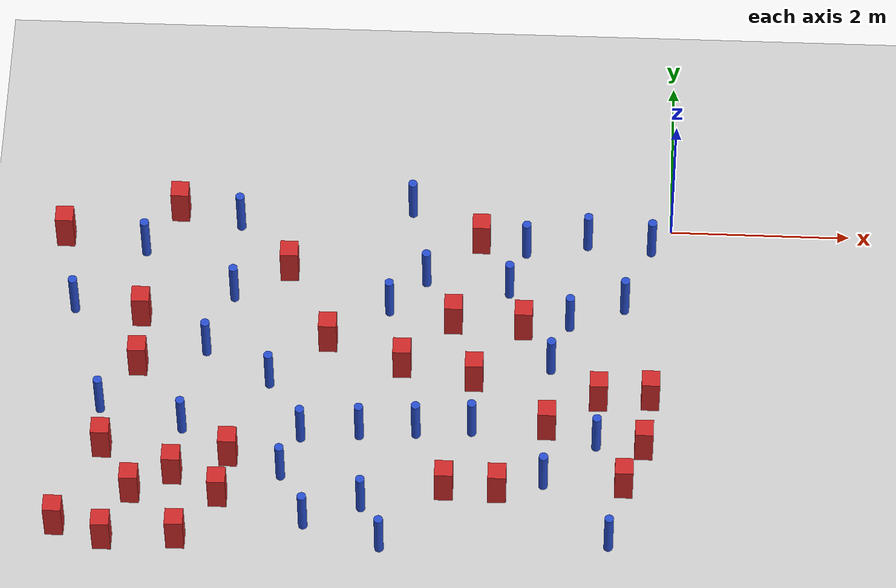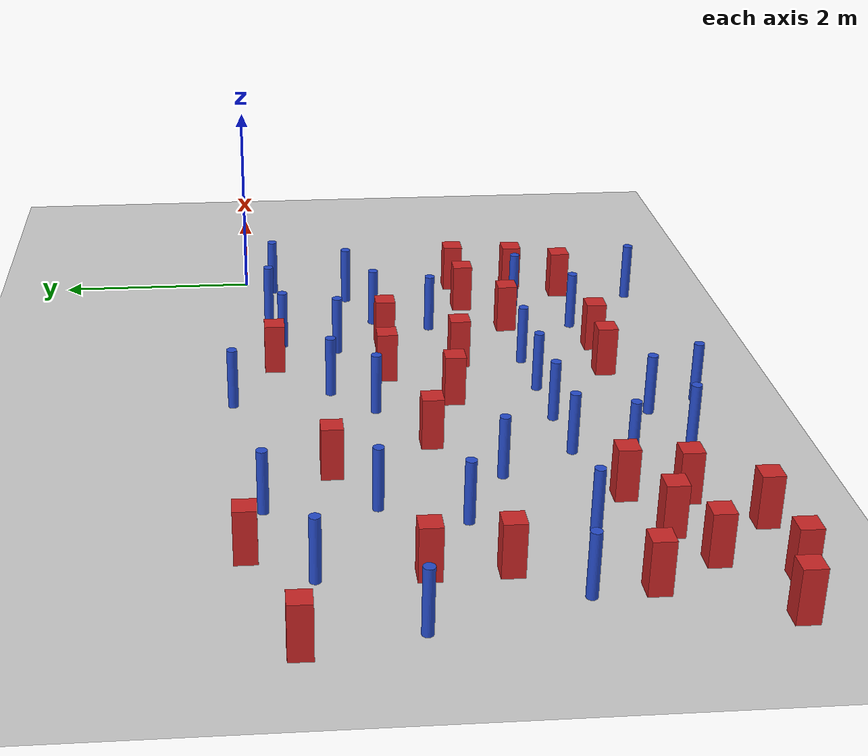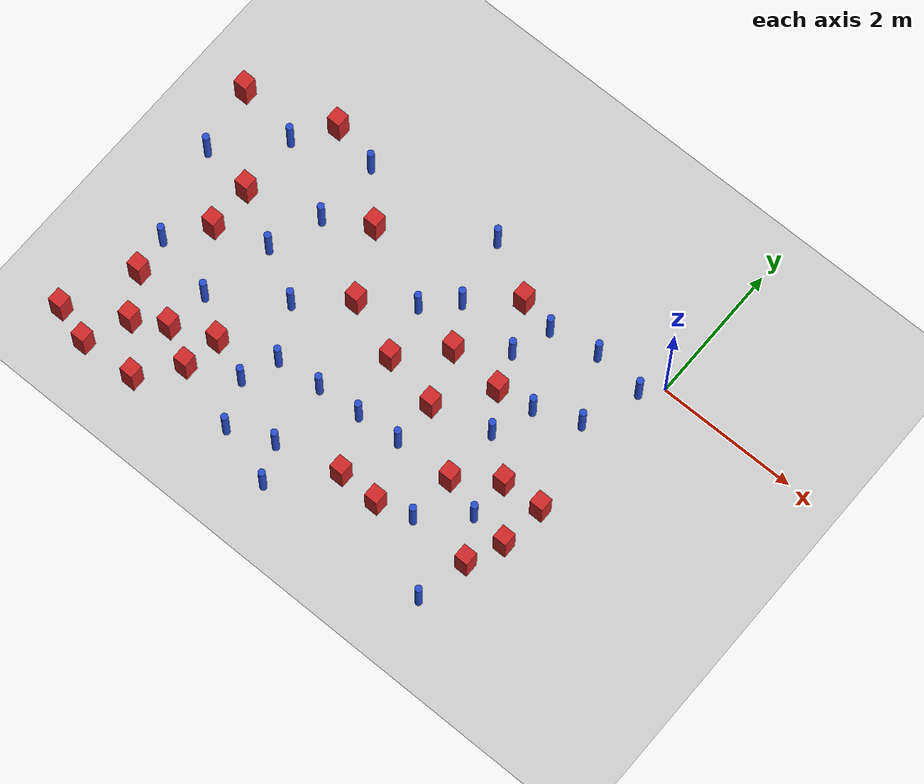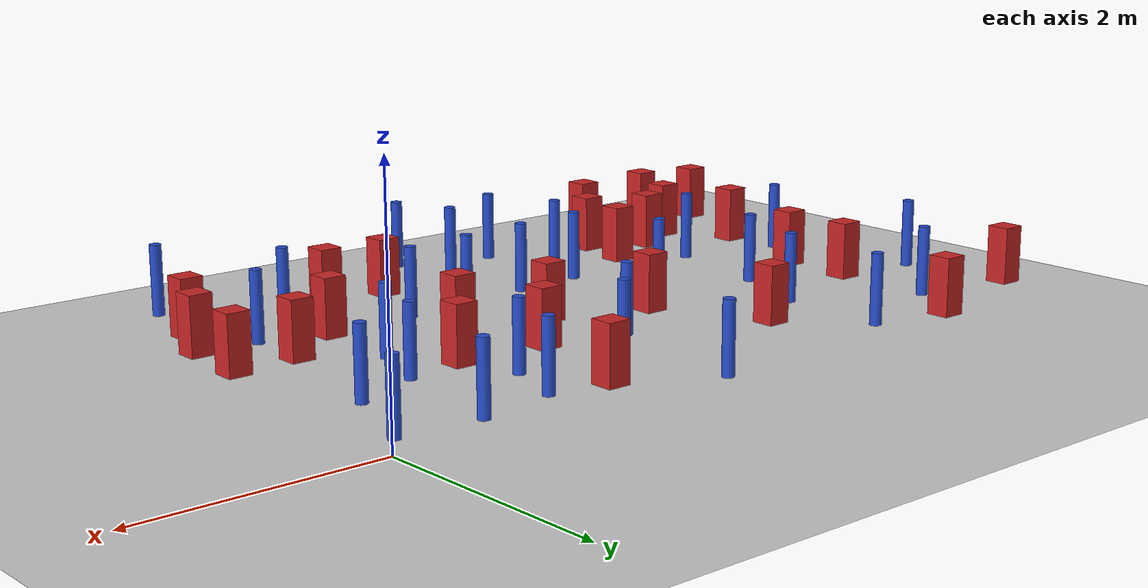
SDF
<sdf version="1.6">
 <world name="default">
  <model name="ground_plane">
   <static>1</static>
   <link name="link">
    <collision name="collision">
     <geometry><plane><normal>0 0 1</normal><size>100 100</size></plane></geometry>
     <surface><friction><ode><mu>100</mu><mu2>50</mu2></ode></friction></surface>
    </collision>
    <visual name="visual">
     <cast_shadows>0</cast_shadows>
     <geometry><plane><normal>0 0 1</normal><size>100 100</size></plane></geometry>
     <material>
      <ambient>1.0 1.0 1.0 1.0</ambient>
      <diffuse>0.8 0.8 0.8 1.0</diffuse>
      <specular>0.01 0.01 0.01 1.000000</specular>
     </material>
    </visual>
   </link>
  </model>
  <model name="square_post_obstacle1">
   <static>true</static>
   <pose>-4.26526882868 -0.711887170166 1.91545236811e-07 -7.35059704564e-06 1.12565212e-07 2.39332434364e-05</pose>
   <link name="link">
    <pose>0 0 0.25 0 -0 0</pose>
    <inertial>
     <mass>100</mass>
     <inertia>
      <ixx>0.166667</ixx>
      <ixy>0</ixy>
      <ixz>0</ixz>
      <iyy>0.166667</iyy>
      <iyz>0</iyz>
      <izz>0.166667</izz>
     </inertia>
    </inertial>
    <collision name="collision"><geometry><box><size>.2 .2 .5</size></box></geometry></collision>
    <visual name="visual">
     <geometry><box><size>.2 .2 .5</size></box></geometry>
     <material>
      <script><name>Gazebo/Red</name><uri>file://media/materials/scripts/gazebo.material</uri></script>
     </material>
    </visual>
   </link>
  </model>
  <model name="pole_obstacle1">
   <static>true</static>
   <pose>-6.63601493796 -1.28461203914 7.38925637345e-09 -8.471706928e-08 1.24976765134e-08 -1.74513093015e-07</pose>
   <link name="link">
    <pose>0 0 0.3 0 -0 0</pose>
    <inertial>
     <mass>1</mass>
     <inertia><ixx>0.145833</ixx><ixy>0</ixy><ixz>0</ixz><iyy>0.145833</iyy><iyz>0</iyz><izz>0.125</izz></inertia>
    </inertial>
    <collision name="collision">
     <geometry><cylinder><radius>0.05</radius><length>.6</length></cylinder></geometry>
    </collision>
    <visual name="visual">
     <geometry><cylinder><radius>0.05</radius><length>.6</length></cylinder></geometry>
     <material>
      <script><name>Gazebo/Blue</name><uri>file://media/materials/scripts/gazebo.material</uri></script>
     </material>
    </visual>
   </link>
  </model>
  <model name="pole_obstacle9">
   <static>true</static>
   <pose>-4.84726449901 -0.0963658252567 7.38925637345e-09 -8.47170692799e-08 1.24976765039e-08 -1.74513093019e-07</pose>
   <link name="link">
    <pose>0 0 0.3 0 -0 0</pose>
    <inertial>
     <mass>1</mass>
     <inertia><ixx>0.145833</ixx><ixy>0</ixy><ixz>0</ixz><iyy>0.145833</iyy><iyz>0</iyz><izz>0.125</izz></inertia>
    </inertial>
    <collision name="collision">
     <geometry><cylinder><radius>0.05</radius><length>.6</length></cylinder></geometry>
    </collision>
    <visual name="visual">
     <geometry><cylinder><radius>0.05</radius><length>.6</length></cylinder></geometry>
     <material>
      <script><name>Gazebo/Blue</name><uri>file://media/materials/scripts/gazebo.material</uri></script>
     </material>
    </visual>
   </link>
  </model>
  <model name="pole_obstacle17">
   <static>true</static>
   <pose>-0.780352660675 -2.9070580991 7.38925637345e-09 -8.47170692799e-08 1.2497676509e-08 -1.74513093016e-07</pose>
   <link name="link">
    <pose>0 0 0.3 0 -0 0</pose>
    <inertial>
     <mass>1</mass>
     <inertia><ixx>0.145833</ixx><ixy>0</ixy><ixz>0</ixz><iyy>0.145833</iyy><iyz>0</iyz><izz>0.125</izz></inertia>
    </inertial>
    <collision name="collision">
     <geometry><cylinder><radius>0.05</radius><length>.6</length></cylinder></geometry>
    </collision>
    <visual name="visual">
     <geometry><cylinder><radius>0.05</radius><length>.6</length></cylinder></geometry>
     <material>
      <script><name>Gazebo/Blue</name><uri>file://media/materials/scripts/gazebo.material</uri></script>
     </material>
    </visual>
   </link>
  </model>
  <model name="pole_obstacle19">
   <static>true</static>
   <pose>-2.72758485795 -0.791963947445 7.38925637345e-09 -8.471706928e-08 1.24976765177e-08 -1.74513093012e-07</pose>
   <link name="link">
    <pose>0 0 0.3 0 -0 0</pose>
    <inertial>
     <mass>1</mass>
     <inertia><ixx>0.145833</ixx><ixy>0</ixy><ixz>0</ixz><iyy>0.145833</iyy><iyz>0</iyz><izz>0.125</izz></inertia>
    </inertial>
    <collision name="collision">
     <geometry><cylinder><radius>0.05</radius><length>.6</length></cylinder></geometry>
    </collision>
    <visual name="visual">
     <geometry><cylinder><radius>0.05</radius><length>.6</length></cylinder></geometry>
     <material>
      <script><name>Gazebo/Blue</name><uri>file://media/materials/scripts/gazebo.material</uri></script>
     </material>
    </visual>
   </link>
  </model>
  <model name="pole_obstacle29">
   <static>true</static>
   <pose>-0.505523517764 -1.08619555104 7.38925637345e-09 -8.471706928e-08 1.24976765092e-08 -1.74513093016e-07</pose>
   <link name="link">
    <pose>0 0 0.3 0 -0 0</pose>
    <inertial>
     <mass>1</mass>
     <inertia><ixx>0.145833</ixx><ixy>0</ixy><ixz>0</ixz><iyy>0.145833</iyy><iyz>0</iyz><izz>0.125</izz></inertia>
    </inertial>
    <collision name="collision">
     <geometry><cylinder><radius>0.05</radius><length>.6</length></cylinder></geometry>
    </collision>
    <visual name="visual">
     <geometry><cylinder><radius>0.05</radius><length>.6</length></cylinder></geometry>
     <material>
      <script><name>Gazebo/Blue</name><uri>file://media/materials/scripts/gazebo.material</uri></script>
     </material>
    </visual>
   </link>
  </model>
  <model name="square_post_obstacle35">
   <static>true</static>
   <pose>-2.13155603779 -0.265494612136 1.91545236811e-07 -7.35059704564e-06 1.12565212e-07 2.39332434364e-05</pose>
   <link name="link">
    <pose>0 0 0.25 0 -0 0</pose>
    <inertial>
     <mass>100</mass>
     <inertia>
      <ixx>0.166667</ixx>
      <ixy>0</ixy>
      <ixz>0</ixz>
      <iyy>0.166667</iyy>
      <iyz>0</iyz>
      <izz>0.166667</izz>
     </inertia>
    </inertial>
    <collision name="collision"><geometry><box><size>.2 .2 .5</size></box></geometry></collision>
    <visual name="visual">
     <geometry><box><size>.2 .2 .5</size></box></geometry>
     <material>
      <script><name>Gazebo/Red</name><uri>file://media/materials/scripts/gazebo.material</uri></script>
     </material>
    </visual>
   </link>
  </model>
  <model name="pole_obstacle42">
   <static>true</static>
   <pose>-3.12457049123 -1.19997467191 7.38925637345e-09 -8.471706928e-08 1.24976765152e-08 -1.74513093012e-07</pose>
   <link name="link">
    <pose>0 0 0.3 0 -0 0</pose>
    <inertial>
     <mass>1</mass>
     <inertia><ixx>0.145833</ixx><ixy>0</ixy><ixz>0</ixz><iyy>0.145833</iyy><iyz>0</iyz><izz>0.125</izz></inertia>
    </inertial>
    <collision name="collision">
     <geometry><cylinder><radius>0.05</radius><length>.6</length></cylinder></geometry>
    </collision>
    <visual name="visual">
     <geometry><cylinder><radius>0.05</radius><length>.6</length></cylinder></geometry>
     <material>
      <script><name>Gazebo/Blue</name><uri>file://media/materials/scripts/gazebo.material</uri></script>
     </material>
    </visual>
   </link>
  </model>
  <model name="pole_obstacle45">
   <static>true</static>
   <pose>-4.86580959171 -1.06866118118 7.38925637345e-09 -8.471706928e-08 1.24976765134e-08 -1.74513093015e-07</pose>
   <link name="link">
    <pose>0 0 0.3 0 -0 0</pose>
    <inertial>
     <mass>1</mass>
     <inertia><ixx>0.145833</ixx><ixy>0</ixy><ixz>0</ixz><iyy>0.145833</iyy><iyz>0</iyz><izz>0.125</izz></inertia>
    </inertial>
    <collision name="collision">
     <geometry><cylinder><radius>0.05</radius><length>.6</length></cylinder></geometry>
    </collision>
    <visual name="visual">
     <geometry><cylinder><radius>0.05</radius><length>.6</length></cylinder></geometry>
     <material>
      <script><name>Gazebo/Blue</name><uri>file://media/materials/scripts/gazebo.material</uri></script>
     </material>
    </visual>
   </link>
  </model>
  <model name="square_post_obstacle48">
   <static>true</static>
   <pose>-4.89228621747 -3.72092902733 1.91545236811e-07 -7.35059704564e-06 1.12565212e-07 2.39332434364e-05</pose>
   <link name="link">
    <pose>0 0 0.25 0 -0 0</pose>
    <inertial>
     <mass>100</mass>
     <inertia>
      <ixx>0.166667</ixx>
      <ixy>0</ixy>
      <ixz>0</ixz>
      <iyy>0.166667</iyy>
      <iyz>0</iyz>
      <izz>0.166667</izz>
     </inertia>
    </inertial>
    <collision name="collision"><geometry><box><size>.2 .2 .5</size></box></geometry></collision>
    <visual name="visual">
     <geometry><box><size>.2 .2 .5</size></box></geometry>
     <material>
      <script><name>Gazebo/Red</name><uri>file://media/materials/scripts/gazebo.material</uri></script>
     </material>
    </visual>
   </link>
  </model>
  <model name="square_post_obstacle55">
   <static>true</static>
   <pose>-1.62393495487 -1.41475054832 1.91545236811e-07 -7.35059704564e-06 1.12565212e-07 2.39332434364e-05</pose>
   <link name="link">
    <pose>0 0 0.25 0 -0 0</pose>
    <inertial>
     <mass>100</mass>
     <inertia>
      <ixx>0.166667</ixx>
      <ixy>0</ixy>
      <ixz>0</ixz>
      <iyy>0.166667</iyy>
      <iyz>0</iyz>
      <izz>0.166667</izz>
     </inertia>
    </inertial>
    <collision name="collision"><geometry><box><size>.2 .2 .5</size></box></geometry></collision>
    <visual name="visual">
     <geometry><box><size>.2 .2 .5</size></box></geometry>
     <material>
      <script><name>Gazebo/Red</name><uri>file://media/materials/scripts/gazebo.material</uri></script>
     </material>
    </visual>
   </link>
  </model>
  <model name="square_post_obstacle57">
   <static>true</static>
   <pose>-5.88093063493 -1.38299816439 1.91545236811e-07 -7.35059704564e-06 1.12565212e-07 2.39332434364e-05</pose>
   <link name="link">
    <pose>0 0 0.25 0 -0 0</pose>
    <inertial>
     <mass>100</mass>
     <inertia>
      <ixx>0.166667</ixx>
      <ixy>0</ixy>
      <ixz>0</ixz>
      <iyy>0.166667</iyy>
      <iyz>0</iyz>
      <izz>0.166667</izz>
     </inertia>
    </inertial>
    <collision name="collision"><geometry><box><size>.2 .2 .5</size></box></geometry></collision>
    <visual name="visual">
     <geometry><box><size>.2 .2 .5</size></box></geometry>
     <material>
      <script><name>Gazebo/Red</name><uri>file://media/materials/scripts/gazebo.material</uri></script>
     </material>
    </visual>
   </link>
  </model>
  <model name="square_post_obstacle58">
   <static>true</static>
   <pose>-1.32920908359 -2.72755203425 1.91545236811e-07 -7.35059704564e-06 1.12565212e-07 2.39332434364e-05</pose>
   <link name="link">
    <pose>0 0 0.25 0 -0 0</pose>
    <inertial>
     <mass>100</mass>
     <inertia>
      <ixx>0.166667</ixx>
      <ixy>0</ixy>
      <ixz>0</ixz>
      <iyy>0.166667</iyy>
      <iyz>0</iyz>
      <izz>0.166667</izz>
     </inertia>
    </inertial>
    <collision name="collision"><geometry><box><size>.2 .2 .5</size></box></geometry></collision>
    <visual name="visual">
     <geometry><box><size>.2 .2 .5</size></box></geometry>
     <material>
      <script><name>Gazebo/Red</name><uri>file://media/materials/scripts/gazebo.material</uri></script>
     </material>
    </visual>
   </link>
  </model>
  <model name="square_post_obstacle59">
   <static>true</static>
   <pose>-1.84909285894 -3.56050498082 1.91545236811e-07 -7.35059704564e-06 1.12565212e-07 2.39332434364e-05</pose>
   <link name="link">
    <pose>0 0 0.25 0 -0 0</pose>
    <inertial>
     <mass>100</mass>
     <inertia>
      <ixx>0.166667</ixx>
      <ixy>0</ixy>
      <ixz>0</ixz>
      <iyy>0.166667</iyy>
      <iyz>0</iyz>
      <izz>0.166667</izz>
     </inertia>
    </inertial>
    <collision name="collision"><geometry><box><size>.2 .2 .5</size></box></geometry></collision>
    <visual name="visual">
     <geometry><box><size>.2 .2 .5</size></box></geometry>
     <material>
      <script><name>Gazebo/Red</name><uri>file://media/materials/scripts/gazebo.material</uri></script>
     </material>
    </visual>
   </link>
  </model>
  <model name="pole_obstacle57">
   <static>true</static>
   <pose>-3.38586564021 -2.8536109097 7.38925637345e-09 -8.471706928e-08 1.24976765098e-08 -1.74513093016e-07</pose>
   <link name="link">
    <pose>0 0 0.3 0 -0 0</pose>
    <inertial>
     <mass>1</mass>
     <inertia><ixx>0.145833</ixx><ixy>0</ixy><ixz>0</ixz><iyy>0.145833</iyy><iyz>0</iyz><izz>0.125</izz></inertia>
    </inertial>
    <collision name="collision">
     <geometry><cylinder><radius>0.05</radius><length>.6</length></cylinder></geometry>
    </collision>
    <visual name="visual">
     <geometry><cylinder><radius>0.05</radius><length>.6</length></cylinder></geometry>
     <material>
      <script><name>Gazebo/Blue</name><uri>file://media/materials/scripts/gazebo.material</uri></script>
     </material>
    </visual>
   </link>
  </model>
  <model name="square_post_obstacle67">
   <static>true</static>
   <pose>-2.4062331315 -1.36412563275 1.91545236811e-07 -7.35059704564e-06 1.12565212e-07 2.39332434364e-05</pose>
   <link name="link">
    <pose>0 0 0.25 0 -0 0</pose>
    <inertial>
     <mass>100</mass>
     <inertia>
      <ixx>0.166667</ixx>
      <ixy>0</ixy>
      <ixz>0</ixz>
      <iyy>0.166667</iyy>
      <iyz>0</iyz>
      <izz>0.166667</izz>
     </inertia>
    </inertial>
    <collision name="collision"><geometry><box><size>.2 .2 .5</size></box></geometry></collision>
    <visual name="visual">
     <geometry><box><size>.2 .2 .5</size></box></geometry>
     <material>
      <script><name>Gazebo/Red</name><uri>file://media/materials/scripts/gazebo.material</uri></script>
     </material>
    </visual>
   </link>
  </model>
  <model name="pole_obstacle66">
   <static>true</static>
   <pose>-0.935268300344 -0.232720809685 7.38925637345e-09 -8.471706928e-08 1.24976765152e-08 -1.74513093011e-07</pose>
   <link name="link">
    <pose>0 0 0.3 0 -0 0</pose>
    <inertial>
     <mass>1</mass>
     <inertia><ixx>0.145833</ixx><ixy>0</ixy><ixz>0</ixz><iyy>0.145833</iyy><iyz>0</iyz><izz>0.125</izz></inertia>
    </inertial>
    <collision name="collision">
     <geometry><cylinder><radius>0.05</radius><length>.6</length></cylinder></geometry>
    </collision>
    <visual name="visual">
     <geometry><cylinder><radius>0.05</radius><length>.6</length></cylinder></geometry>
     <material>
      <script><name>Gazebo/Blue</name><uri>file://media/materials/scripts/gazebo.material</uri></script>
     </material>
    </visual>
   </link>
  </model>
  <model name="square_post_obstacle69">
   <static>true</static>
   <pose>-5.40521460969 -3.44993451107 1.91545236811e-07 -7.35059704564e-06 1.12565212e-07 2.39332434364e-05</pose>
   <link name="link">
    <pose>0 0 0.25 0 -0 0</pose>
    <inertial>
     <mass>100</mass>
     <inertia>
      <ixx>0.166667</ixx>
      <ixy>0</ixy>
      <ixz>0</ixz>
      <iyy>0.166667</iyy>
      <iyz>0</iyz>
      <izz>0.166667</izz>
     </inertia>
    </inertial>
    <collision name="collision"><geometry><box><size>.2 .2 .5</size></box></geometry></collision>
    <visual name="visual">
     <geometry><box><size>.2 .2 .5</size></box></geometry>
     <material>
      <script><name>Gazebo/Red</name><uri>file://media/materials/scripts/gazebo.material</uri></script>
     </material>
    </visual>
   </link>
  </model>
  <model name="square_post_obstacle70">
   <static>true</static>
   <pose>-0.769732269394 -2.33192935458 1.91545236811e-07 -7.35059704564e-06 1.12565212e-07 2.39332434364e-05</pose>
   <link name="link">
    <pose>0 0 0.25 0 -0 0</pose>
    <inertial>
     <mass>100</mass>
     <inertia>
      <ixx>0.166667</ixx>
      <ixy>0</ixy>
      <ixz>0</ixz>
      <iyy>0.166667</iyy>
      <iyz>0</iyz>
      <izz>0.166667</izz>
     </inertia>
    </inertial>
    <collision name="collision"><geometry><box><size>.2 .2 .5</size></box></geometry></collision>
    <visual name="visual">
     <geometry><box><size>.2 .2 .5</size></box></geometry>
     <material>
      <script><name>Gazebo/Red</name><uri>file://media/materials/scripts/gazebo.material</uri></script>
     </material>
    </visual>
   </link>
  </model>
  <model name="pole_obstacle67">
   <static>true</static>
   <pose>-5.89477469104 -0.48539854308 7.38925637345e-09 -8.471706928e-08 1.24976765164e-08 -1.74513093013e-07</pose>
   <link name="link">
    <pose>0 0 0.3 0 -0 0</pose>
    <inertial>
     <mass>1</mass>
     <inertia><ixx>0.145833</ixx><ixy>0</ixy><ixz>0</ixz><iyy>0.145833</iyy><iyz>0</iyz><izz>0.125</izz></inertia>
    </inertial>
    <collision name="collision">
     <geometry><cylinder><radius>0.05</radius><length>.6</length></cylinder></geometry>
    </collision>
    <visual name="visual">
     <geometry><cylinder><radius>0.05</radius><length>.6</length></cylinder></geometry>
     <material>
      <script><name>Gazebo/Blue</name><uri>file://media/materials/scripts/gazebo.material</uri></script>
     </material>
    </visual>
   </link>
  </model>
  <model name="pole_obstacle73">
   <static>true</static>
   <pose>-5.33891521916 -2.83716065819 7.38925637345e-09 -8.47170692798e-08 1.24976764937e-08 -1.74513093023e-07</pose>
   <link name="link">
    <pose>0 0 0.3 0 -0 0</pose>
    <inertial>
     <mass>1</mass>
     <inertia><ixx>0.145833</ixx><ixy>0</ixy><ixz>0</ixz><iyy>0.145833</iyy><iyz>0</iyz><izz>0.125</izz></inertia>
    </inertial>
    <collision name="collision">
     <geometry><cylinder><radius>0.05</radius><length>.6</length></cylinder></geometry>
    </collision>
    <visual name="visual">
     <geometry><cylinder><radius>0.05</radius><length>.6</length></cylinder></geometry>
     <material>
      <script><name>Gazebo/Blue</name><uri>file://media/materials/scripts/gazebo.material</uri></script>
     </material>
    </visual>
   </link>
  </model>
  <model name="pole_obstacle83">
   <static>true</static>
   <pose>-0.618331014408 -4.18906041752 7.38925637345e-09 -8.471706928e-08 1.24976765086e-08 -1.74513093015e-07</pose>
   <link name="link">
    <pose>0 0 0.3 0 -0 0</pose>
    <inertial>
     <mass>1</mass>
     <inertia><ixx>0.145833</ixx><ixy>0</ixy><ixz>0</ixz><iyy>0.145833</iyy><iyz>0</iyz><izz>0.125</izz></inertia>
    </inertial>
    <collision name="collision">
     <geometry><cylinder><radius>0.05</radius><length>.6</length></cylinder></geometry>
    </collision>
    <visual name="visual">
     <geometry><cylinder><radius>0.05</radius><length>.6</length></cylinder></geometry>
     <material>
      <script><name>Gazebo/Blue</name><uri>file://media/materials/scripts/gazebo.material</uri></script>
     </material>
    </visual>
   </link>
  </model>
  <model name="pole_obstacle88">
   <static>true</static>
   <pose>-2.76405227803 -2.81121883038 7.38925637345e-09 -8.47170692798e-08 1.24976764939e-08 -1.74513093025e-07</pose>
   <link name="link">
    <pose>0 0 0.3 0 -0 0</pose>
    <inertial>
     <mass>1</mass>
     <inertia><ixx>0.145833</ixx><ixy>0</ixy><ixz>0</ixz><iyy>0.145833</iyy><iyz>0</iyz><izz>0.125</izz></inertia>
    </inertial>
    <collision name="collision">
     <geometry><cylinder><radius>0.05</radius><length>.6</length></cylinder></geometry>
    </collision>
    <visual name="visual">
     <geometry><cylinder><radius>0.05</radius><length>.6</length></cylinder></geometry>
     <material>
      <script><name>Gazebo/Blue</name><uri>file://media/materials/scripts/gazebo.material</uri></script>
     </material>
    </visual>
   </link>
  </model>
  <model name="pole_obstacle93">
   <static>true</static>
   <pose>-2.91851841071 0.152679662754 7.38925637345e-09 -8.471706928e-08 1.2497676517e-08 -1.74513093012e-07</pose>
   <link name="link">
    <pose>0 0 0.3 0 -0 0</pose>
    <inertial>
     <mass>1</mass>
     <inertia><ixx>0.145833</ixx><ixy>0</ixy><ixz>0</ixz><iyy>0.145833</iyy><iyz>0</iyz><izz>0.125</izz></inertia>
    </inertial>
    <collision name="collision">
     <geometry><cylinder><radius>0.05</radius><length>.6</length></cylinder></geometry>
    </collision>
    <visual name="visual">
     <geometry><cylinder><radius>0.05</radius><length>.6</length></cylinder></geometry>
     <material>
      <script><name>Gazebo/Blue</name><uri>file://media/materials/scripts/gazebo.material</uri></script>
     </material>
    </visual>
   </link>
  </model>
  <model name="pole_obstacle94">
   <static>true</static>
   <pose>-4.02808985476 -2.90569835696 7.38925637345e-09 -8.47170692798e-08 1.24976764953e-08 -1.74513093023e-07</pose>
   <link name="link">
    <pose>0 0 0.3 0 -0 0</pose>
    <inertial>
     <mass>1</mass>
     <inertia><ixx>0.145833</ixx><ixy>0</ixy><ixz>0</ixz><iyy>0.145833</iyy><iyz>0</iyz><izz>0.125</izz></inertia>
    </inertial>
    <collision name="collision">
     <geometry><cylinder><radius>0.05</radius><length>.6</length></cylinder></geometry>
    </collision>
    <visual name="visual">
     <geometry><cylinder><radius>0.05</radius><length>.6</length></cylinder></geometry>
     <material>
      <script><name>Gazebo/Blue</name><uri>file://media/materials/scripts/gazebo.material</uri></script>
     </material>
    </visual>
   </link>
  </model>
  <model name="square_post_obstacle84">
   <static>true</static>
   <pose>-2.95177054765 -1.96494600228 1.91545236811e-07 -7.35059704564e-06 1.12565212e-07 2.39332434364e-05</pose>
   <link name="link">
    <pose>0 0 0.25 0 -0 0</pose>
    <inertial>
     <mass>100</mass>
     <inertia>
      <ixx>0.166667</ixx>
      <ixy>0</ixy>
      <ixz>0</ixz>
      <iyy>0.166667</iyy>
      <iyz>0</iyz>
      <izz>0.166667</izz>
     </inertia>
    </inertial>
    <collision name="collision"><geometry><box><size>.2 .2 .5</size></box></geometry></collision>
    <visual name="visual">
     <geometry><box><size>.2 .2 .5</size></box></geometry>
     <material>
      <script><name>Gazebo/Red</name><uri>file://media/materials/scripts/gazebo.material</uri></script>
     </material>
    </visual>
   </link>
  </model>
  <model name="pole_obstacle98">
   <static>true</static>
   <pose>-3.94500633103 -4.02688731204 7.38925637345e-09 -8.47170692793e-08 1.24976764468e-08 -1.74513093039e-07</pose>
   <link name="link">
    <pose>0 0 0.3 0 -0 0</pose>
    <inertial>
     <mass>1</mass>
     <inertia><ixx>0.145833</ixx><ixy>0</ixy><ixz>0</ixz><iyy>0.145833</iyy><iyz>0</iyz><izz>0.125</izz></inertia>
    </inertial>
    <collision name="collision">
     <geometry><cylinder><radius>0.05</radius><length>.6</length></cylinder></geometry>
    </collision>
    <visual name="visual">
     <geometry><cylinder><radius>0.05</radius><length>.6</length></cylinder></geometry>
     <material>
      <script><name>Gazebo/Blue</name><uri>file://media/materials/scripts/gazebo.material</uri></script>
     </material>
    </visual>
   </link>
  </model>
  <model name="square_post_obstacle88">
   <static>true</static>
   <pose>-5.84811692595 -3.70355250228 1.91545236811e-07 -7.35059704564e-06 1.12565212e-07 2.39332434364e-05</pose>
   <link name="link">
    <pose>0 0 0.25 0 -0 0</pose>
    <inertial>
     <mass>100</mass>
     <inertia>
      <ixx>0.166667</ixx>
      <ixy>0</ixy>
      <ixz>0</ixz>
      <iyy>0.166667</iyy>
      <iyz>0</iyz>
      <izz>0.166667</izz>
     </inertia>
    </inertial>
    <collision name="collision"><geometry><box><size>.2 .2 .5</size></box></geometry></collision>
    <visual name="visual">
     <geometry><box><size>.2 .2 .5</size></box></geometry>
     <material>
      <script><name>Gazebo/Red</name><uri>file://media/materials/scripts/gazebo.material</uri></script>
     </material>
    </visual>
   </link>
  </model>
  <model name="square_post_obstacle89">
   <static>true</static>
   <pose>-6.11195427561 -4.30634215229 1.91545236811e-07 -7.35059704564e-06 1.12565212e-07 2.39332434364e-05</pose>
   <link name="link">
    <pose>0 0 0.25 0 -0 0</pose>
    <inertial>
     <mass>100</mass>
     <inertia>
      <ixx>0.166667</ixx>
      <ixy>0</ixy>
      <ixz>0</ixz>
      <iyy>0.166667</iyy>
      <iyz>0</iyz>
      <izz>0.166667</izz>
     </inertia>
    </inertial>
    <collision name="collision"><geometry><box><size>.2 .2 .5</size></box></geometry></collision>
    <visual name="visual">
     <geometry><box><size>.2 .2 .5</size></box></geometry>
     <material>
      <script><name>Gazebo/Red</name><uri>file://media/materials/scripts/gazebo.material</uri></script>
     </material>
    </visual>
   </link>
  </model>
  <model name="square_post_obstacle90">
   <static>true</static>
   <pose>-4.80779694408 -3.19485197217 1.91545236811e-07 -7.35059704564e-06 1.12565212e-07 2.39332434364e-05</pose>
   <link name="link">
    <pose>0 0 0.25 0 -0 0</pose>
    <inertial>
     <mass>100</mass>
     <inertia>
      <ixx>0.166667</ixx>
      <ixy>0</ixy>
      <ixz>0</ixz>
      <iyy>0.166667</iyy>
      <iyz>0</iyz>
      <izz>0.166667</izz>
     </inertia>
    </inertial>
    <collision name="collision"><geometry><box><size>.2 .2 .5</size></box></geometry></collision>
    <visual name="visual">
     <geometry><box><size>.2 .2 .5</size></box></geometry>
     <material>
      <script><name>Gazebo/Red</name><uri>file://media/materials/scripts/gazebo.material</uri></script>
     </material>
    </visual>
   </link>
  </model>
  <model name="square_post_obstacle91">
   <static>true</static>
   <pose>-6.64189005051 -4.14414729263 1.91545236811e-07 -7.35059704564e-06 1.12565212e-07 2.39332434364e-05</pose>
   <link name="link">
    <pose>0 0 0.25 0 -0 0</pose>
    <inertial>
     <mass>100</mass>
     <inertia>
      <ixx>0.166667</ixx>
      <ixy>0</ixy>
      <ixz>0</ixz>
      <iyy>0.166667</iyy>
      <iyz>0</iyz>
      <izz>0.166667</izz>
     </inertia>
    </inertial>
    <collision name="collision"><geometry><box><size>.2 .2 .5</size></box></geometry></collision>
    <visual name="visual">
     <geometry><box><size>.2 .2 .5</size></box></geometry>
     <material>
      <script><name>Gazebo/Red</name><uri>file://media/materials/scripts/gazebo.material</uri></script>
     </material>
    </visual>
   </link>
  </model>
  <model name="pole_obstacle105">
   <static>true</static>
   <pose>-1.11126733627 -1.33633877075 7.38925637345e-09 -8.471706928e-08 1.24976765079e-08 -1.74513093017e-07</pose>
   <link name="link">
    <pose>0 0 0.3 0 -0 0</pose>
    <inertial>
     <mass>1</mass>
     <inertia><ixx>0.145833</ixx><ixy>0</ixy><ixz>0</ixz><iyy>0.145833</iyy><iyz>0</iyz><izz>0.125</izz></inertia>
    </inertial>
    <collision name="collision">
     <geometry><cylinder><radius>0.05</radius><length>.6</length></cylinder></geometry>
    </collision>
    <visual name="visual">
     <geometry><cylinder><radius>0.05</radius><length>.6</length></cylinder></geometry>
     <material>
      <script><name>Gazebo/Blue</name><uri>file://media/materials/scripts/gazebo.material</uri></script>
     </material>
    </visual>
   </link>
  </model>
  <model name="square_post_obstacle110">
   <static>true</static>
   <pose>-5.53677619815 0.0565498946782 1.91545236811e-07 -7.35059704564e-06 1.12565212e-07 2.39332434364e-05</pose>
   <link name="link">
    <pose>0 0 0.25 0 -0 0</pose>
    <inertial>
     <mass>100</mass>
     <inertia>
      <ixx>0.166667</ixx>
      <ixy>0</ixy>
      <ixz>0</ixz>
      <iyy>0.166667</iyy>
      <iyz>0</iyz>
      <izz>0.166667</izz>
     </inertia>
    </inertial>
    <collision name="collision"><geometry><box><size>.2 .2 .5</size></box></geometry></collision>
    <visual name="visual">
     <geometry><box><size>.2 .2 .5</size></box></geometry>
     <material>
      <script><name>Gazebo/Red</name><uri>file://media/materials/scripts/gazebo.material</uri></script>
     </material>
    </visual>
   </link>
  </model>
  <model name="pole_obstacle131">
   <static>true</static>
   <pose>-3.32564139213 -3.78326779569 7.38925637345e-09 -8.47170692798e-08 1.24976764939e-08 -1.74513093025e-07</pose>
   <link name="link">
    <pose>0 0 0.3 0 -0 0</pose>
    <inertial>
     <mass>1</mass>
     <inertia><ixx>0.145833</ixx><ixy>0</ixy><ixz>0</ixz><iyy>0.145833</iyy><iyz>0</iyz><izz>0.125</izz></inertia>
    </inertial>
    <collision name="collision">
     <geometry><cylinder><radius>0.05</radius><length>.6</length></cylinder></geometry>
    </collision>
    <visual name="visual">
     <geometry><cylinder><radius>0.05</radius><length>.6</length></cylinder></geometry>
     <material>
      <script><name>Gazebo/Blue</name><uri>file://media/materials/scripts/gazebo.material</uri></script>
     </material>
    </visual>
   </link>
  </model>
  <model name="pole_obstacle134">
   <static>true</static>
   <pose>-1.79648043623 -0.912565793691 7.38925637345e-09 -8.47170692799e-08 1.24976765075e-08 -1.74513093017e-07</pose>
   <link name="link">
    <pose>0 0 0.3 0 -0 0</pose>
    <inertial>
     <mass>1</mass>
     <inertia><ixx>0.145833</ixx><ixy>0</ixy><ixz>0</ixz><iyy>0.145833</iyy><iyz>0</iyz><izz>0.125</izz></inertia>
    </inertial>
    <collision name="collision">
     <geometry><cylinder><radius>0.05</radius><length>.6</length></cylinder></geometry>
    </collision>
    <visual name="visual">
     <geometry><cylinder><radius>0.05</radius><length>.6</length></cylinder></geometry>
     <material>
      <script><name>Gazebo/Blue</name><uri>file://media/materials/scripts/gazebo.material</uri></script>
     </material>
    </visual>
   </link>
  </model>
  <model name="pole_obstacle135">
   <static>true</static>
   <pose>-4.22328069709 -3.40781659346 7.38925637345e-09 -8.47170692798e-08 1.24976764937e-08 -1.74513093023e-07</pose>
   <link name="link">
    <pose>0 0 0.3 0 -0 0</pose>
    <inertial>
     <mass>1</mass>
     <inertia><ixx>0.145833</ixx><ixy>0</ixy><ixz>0</ixz><iyy>0.145833</iyy><iyz>0</iyz><izz>0.125</izz></inertia>
    </inertial>
    <collision name="collision">
     <geometry><cylinder><radius>0.05</radius><length>.6</length></cylinder></geometry>
    </collision>
    <visual name="visual">
     <geometry><cylinder><radius>0.05</radius><length>.6</length></cylinder></geometry>
     <material>
      <script><name>Gazebo/Blue</name><uri>file://media/materials/scripts/gazebo.material</uri></script>
     </material>
    </visual>
   </link>
  </model>
  <model name="square_post_obstacle120">
   <static>true</static>
   <pose>-2.14847834543 -2.12014857204 1.91545236811e-07 -7.35059704564e-06 1.12565212e-07 2.39332434364e-05</pose>
   <link name="link">
    <pose>0 0 0.25 0 -0 0</pose>
    <inertial>
     <mass>100</mass>
     <inertia>
      <ixx>0.166667</ixx>
      <ixy>0</ixy>
      <ixz>0</ixz>
      <iyy>0.166667</iyy>
      <iyz>0</iyz>
      <izz>0.166667</izz>
     </inertia>
    </inertial>
    <collision name="collision"><geometry><box><size>.2 .2 .5</size></box></geometry></collision>
    <visual name="visual">
     <geometry><box><size>.2 .2 .5</size></box></geometry>
     <material>
      <script><name>Gazebo/Red</name><uri>file://media/materials/scripts/gazebo.material</uri></script>
     </material>
    </visual>
   </link>
  </model>
  <model name="square_post_obstacle135">
   <static>true</static>
   <pose>-0.198296423023 -2.29974833375 1.91545236811e-07 -7.35059704564e-06 1.12565212e-07 2.39332434364e-05</pose>
   <link name="link">
    <pose>0 0 0.25 0 -0 0</pose>
    <inertial>
     <mass>100</mass>
     <inertia>
      <ixx>0.166667</ixx>
      <ixy>0</ixy>
      <ixz>0</ixz>
      <iyy>0.166667</iyy>
      <iyz>0</iyz>
      <izz>0.166667</izz>
     </inertia>
    </inertial>
    <collision name="collision"><geometry><box><size>.2 .2 .5</size></box></geometry></collision>
    <visual name="visual">
     <geometry><box><size>.2 .2 .5</size></box></geometry>
     <material>
      <script><name>Gazebo/Red</name><uri>file://media/materials/scripts/gazebo.material</uri></script>
     </material>
    </visual>
   </link>
  </model>
  <model name="square_post_obstacle151">
   <static>true</static>
   <pose>-0.46919944528 -3.44998623302 1.91545236811e-07 -7.35059704564e-06 1.12565212e-07 2.39332434364e-05</pose>
   <link name="link">
    <pose>0 0 0.25 0 -0 0</pose>
    <inertial>
     <mass>100</mass>
     <inertia>
      <ixx>0.166667</ixx>
      <ixy>0</ixy>
      <ixz>0</ixz>
      <iyy>0.166667</iyy>
      <iyz>0</iyz>
      <izz>0.166667</izz>
     </inertia>
    </inertial>
    <collision name="collision"><geometry><box><size>.2 .2 .5</size></box></geometry></collision>
    <visual name="visual">
     <geometry><box><size>.2 .2 .5</size></box></geometry>
     <material>
      <script><name>Gazebo/Red</name><uri>file://media/materials/scripts/gazebo.material</uri></script>
     </material>
    </visual>
   </link>
  </model>
  <model name="square_post_obstacle163">
   <static>true</static>
   <pose>-6.80715850713 -0.328575365514 1.91545236811e-07 -7.35059704564e-06 1.12565212e-07 2.39332434364e-05</pose>
   <link name="link">
    <pose>0 0 0.25 0 -0 0</pose>
    <inertial>
     <mass>100</mass>
     <inertia>
      <ixx>0.166667</ixx>
      <ixy>0</ixy>
      <ixz>0</ixz>
      <iyy>0.166667</iyy>
      <iyz>0</iyz>
      <izz>0.166667</izz>
     </inertia>
    </inertial>
    <collision name="collision"><geometry><box><size>.2 .2 .5</size></box></geometry></collision>
    <visual name="visual">
     <geometry><box><size>.2 .2 .5</size></box></geometry>
     <material>
      <script><name>Gazebo/Red</name><uri>file://media/materials/scripts/gazebo.material</uri></script>
     </material>
    </visual>
   </link>
  </model>
  <model name="pole_obstacle174">
   <static>true</static>
   <pose>-3.10294530206 -4.28800708873 7.38925637345e-09 -8.47170692794e-08 1.24976764468e-08 -1.7451309304e-07</pose>
   <link name="link">
    <pose>0 0 0.3 0 -0 0</pose>
    <inertial>
     <mass>1</mass>
     <inertia><ixx>0.145833</ixx><ixy>0</ixy><ixz>0</ixz><iyy>0.145833</iyy><iyz>0</iyz><izz>0.125</izz></inertia>
    </inertial>
    <collision name="collision">
     <geometry><cylinder><radius>0.05</radius><length>.6</length></cylinder></geometry>
    </collision>
    <visual name="visual">
     <geometry><cylinder><radius>0.05</radius><length>.6</length></cylinder></geometry>
     <material>
      <script><name>Gazebo/Blue</name><uri>file://media/materials/scripts/gazebo.material</uri></script>
     </material>
    </visual>
   </link>
  </model>
  <model name="square_post_obstacle164">
   <static>true</static>
   <pose>-3.78860021604 -1.64983771172 1.91545236811e-07 -7.35059704564e-06 1.12565212e-07 2.39332434364e-05</pose>
   <link name="link">
    <pose>0 0 0.25 0 -0 0</pose>
    <inertial>
     <mass>100</mass>
     <inertia>
      <ixx>0.166667</ixx>
      <ixy>0</ixy>
      <ixz>0</ixz>
      <iyy>0.166667</iyy>
      <iyz>0</iyz>
      <izz>0.166667</izz>
     </inertia>
    </inertial>
    <collision name="collision"><geometry><box><size>.2 .2 .5</size></box></geometry></collision>
    <visual name="visual">
     <geometry><box><size>.2 .2 .5</size></box></geometry>
     <material>
      <script><name>Gazebo/Red</name><uri>file://media/materials/scripts/gazebo.material</uri></script>
     </material>
    </visual>
   </link>
  </model>
  <model name="pole_obstacle179">
   <static>true</static>
   <pose>-5.13129581037 -1.80920459545 7.38925637345e-09 -8.471706928e-08 1.24976765134e-08 -1.74513093015e-07</pose>
   <link name="link">
    <pose>0 0 0.3 0 -0 0</pose>
    <inertial>
     <mass>1</mass>
     <inertia><ixx>0.145833</ixx><ixy>0</ixy><ixz>0</ixz><iyy>0.145833</iyy><iyz>0</iyz><izz>0.125</izz></inertia>
    </inertial>
    <collision name="collision">
     <geometry><cylinder><radius>0.05</radius><length>.6</length></cylinder></geometry>
    </collision>
    <visual name="visual">
     <geometry><cylinder><radius>0.05</radius><length>.6</length></cylinder></geometry>
     <material>
      <script><name>Gazebo/Blue</name><uri>file://media/materials/scripts/gazebo.material</uri></script>
     </material>
    </visual>
   </link>
  </model>
  <model name="square_post_obstacle186">
   <static>true</static>
   <pose>-2.42969318851 -3.54860558464 1.91545236811e-07 -7.35059704564e-06 1.12565212e-07 2.39332434364e-05</pose>
   <link name="link">
    <pose>0 0 0.25 0 -0 0</pose>
    <inertial>
     <mass>100</mass>
     <inertia>
      <ixx>0.166667</ixx>
      <ixy>0</ixy>
      <ixz>0</ixz>
      <iyy>0.166667</iyy>
      <iyz>0</iyz>
      <izz>0.166667</izz>
     </inertia>
    </inertial>
    <collision name="collision"><geometry><box><size>.2 .2 .5</size></box></geometry></collision>
    <visual name="visual">
     <geometry><box><size>.2 .2 .5</size></box></geometry>
     <material>
      <script><name>Gazebo/Red</name><uri>file://media/materials/scripts/gazebo.material</uri></script>
     </material>
    </visual>
   </link>
  </model>
  <model name="square_post_obstacle196">
   <static>true</static>
   <pose>-6.20023083942 -3.12920197595 1.91545236811e-07 -7.35059704564e-06 1.12565212e-07 2.39332434364e-05</pose>
   <link name="link">
    <pose>0 0 0.25 0 -0 0</pose>
    <inertial>
     <mass>100</mass>
     <inertia>
      <ixx>0.166667</ixx>
      <ixy>0</ixy>
      <ixz>0</ixz>
      <iyy>0.166667</iyy>
      <iyz>0</iyz>
      <izz>0.166667</izz>
     </inertia>
    </inertial>
    <collision name="collision"><geometry><box><size>.2 .2 .5</size></box></geometry></collision>
    <visual name="visual">
     <geometry><box><size>.2 .2 .5</size></box></geometry>
     <material>
      <script><name>Gazebo/Red</name><uri>file://media/materials/scripts/gazebo.material</uri></script>
     </material>
    </visual>
   </link>
  </model>
  <model name="pole_obstacle189">
   <static>true</static>
   <pose>-1.30495734551 -1.91685327122 7.38925637345e-09 -8.471706928e-08 1.24976765079e-08 -1.74513093017e-07</pose>
   <link name="link">
    <pose>0 0 0.3 0 -0 0</pose>
    <inertial>
     <mass>1</mass>
     <inertia><ixx>0.145833</ixx><ixy>0</ixy><ixz>0</ixz><iyy>0.145833</iyy><iyz>0</iyz><izz>0.125</izz></inertia>
    </inertial>
    <collision name="collision">
     <geometry><cylinder><radius>0.05</radius><length>.6</length></cylinder></geometry>
    </collision>
    <visual name="visual">
     <geometry><cylinder><radius>0.05</radius><length>.6</length></cylinder></geometry>
     <material>
      <script><name>Gazebo/Blue</name><uri>file://media/materials/scripts/gazebo.material</uri></script>
     </material>
    </visual>
   </link>
  </model>
  <model name="pole_obstacle193">
   <static>true</static>
   <pose>-4.4104658705 -2.21011689492 7.38925637345e-09 -8.47170692798e-08 1.24976764937e-08 -1.74513093023e-07</pose>
   <link name="link">
    <pose>0 0 0.3 0 -0 0</pose>
    <inertial>
     <mass>1</mass>
     <inertia><ixx>0.145833</ixx><ixy>0</ixy><ixz>0</ixz><iyy>0.145833</iyy><iyz>0</iyz><izz>0.125</izz></inertia>
    </inertial>
    <collision name="collision">
     <geometry><cylinder><radius>0.05</radius><length>.6</length></cylinder></geometry>
    </collision>
    <visual name="visual">
     <geometry><cylinder><radius>0.05</radius><length>.6</length></cylinder></geometry>
     <material>
      <script><name>Gazebo/Blue</name><uri>file://media/materials/scripts/gazebo.material</uri></script>
     </material>
    </visual>
   </link>
  </model>
  <model name="pole_obstacle197">
   <static>true</static>
   <pose>-6.2602159239 -2.6027189449 7.38925637345e-09 -8.47170692798e-08 1.24976764937e-08 -1.74513093023e-07</pose>
   <link name="link">
    <pose>0 0 0.3 0 -0 0</pose>
    <inertial>
     <mass>1</mass>
     <inertia><ixx>0.145833</ixx><ixy>0</ixy><ixz>0</ixz><iyy>0.145833</iyy><iyz>0</iyz><izz>0.125</izz></inertia>
    </inertial>
    <collision name="collision">
     <geometry><cylinder><radius>0.05</radius><length>.6</length></cylinder></geometry>
    </collision>
    <visual name="visual">
     <geometry><cylinder><radius>0.05</radius><length>.6</length></cylinder></geometry>
     <material>
      <script><name>Gazebo/Blue</name><uri>file://media/materials/scripts/gazebo.material</uri></script>
     </material>
    </visual>
   </link>
  </model>
  <model name="square_post_obstacle204">
   <static>true</static>
   <pose>-0.259212463172 -2.94779210157 1.91545236811e-07 -7.35059704564e-06 1.12565212e-07 2.39332434364e-05</pose>
   <link name="link">
    <pose>0 0 0.25 0 -0 0</pose>
    <inertial>
     <mass>100</mass>
     <inertia>
      <ixx>0.166667</ixx>
      <ixy>0</ixy>
      <ixz>0</ixz>
      <iyy>0.166667</iyy>
      <iyz>0</iyz>
      <izz>0.166667</izz>
     </inertia>
    </inertial>
    <collision name="collision"><geometry><box><size>.2 .2 .5</size></box></geometry></collision>
    <visual name="visual">
     <geometry><box><size>.2 .2 .5</size></box></geometry>
     <material>
      <script><name>Gazebo/Red</name><uri>file://media/materials/scripts/gazebo.material</uri></script>
     </material>
    </visual>
   </link>
  </model>
  <model name="pole_obstacle203">
   <static>true</static>
   <pose>-0.2200531856 -0.291371147695 7.38925637345e-09 -8.47170692798e-08 1.24976765032e-08 -1.74513093017e-07</pose>
   <link name="link">
    <pose>0 0 0.3 0 -0 0</pose>
    <inertial>
     <mass>1</mass>
     <inertia><ixx>0.145833</ixx><ixy>0</ixy><ixz>0</ixz><iyy>0.145833</iyy><iyz>0</iyz><izz>0.125</izz></inertia>
    </inertial>
    <collision name="collision">
     <geometry><cylinder><radius>0.05</radius><length>.6</length></cylinder></geometry>
    </collision>
    <visual name="visual">
     <geometry><cylinder><radius>0.05</radius><length>.6</length></cylinder></geometry>
     <material>
      <script><name>Gazebo/Blue</name><uri>file://media/materials/scripts/gazebo.material</uri></script>
     </material>
    </visual>
   </link>
  </model>
  <model name="pole_obstacle206">
   <static>true</static>
   <pose>-1.34864232215 -3.42454292631 7.38925637345e-09 -8.47170692799e-08 1.24976765053e-08 -1.74513093017e-07</pose>
   <link name="link">
    <pose>0 0 0.3 0 -0 0</pose>
    <inertial>
     <mass>1</mass>
     <inertia><ixx>0.145833</ixx><ixy>0</ixy><ixz>0</ixz><iyy>0.145833</iyy><iyz>0</iyz><izz>0.125</izz></inertia>
    </inertial>
    <collision name="collision">
     <geometry><cylinder><radius>0.05</radius><length>.6</length></cylinder></geometry>
    </collision>
    <visual name="visual">
     <geometry><cylinder><radius>0.05</radius><length>.6</length></cylinder></geometry>
     <material>
      <script><name>Gazebo/Blue</name><uri>file://media/materials/scripts/gazebo.material</uri></script>
     </material>
    </visual>
   </link>
  </model>
  <model name="pole_obstacle211">
   <static>true</static>
   <pose>-1.62194820106 -0.361956184912 7.38925637345e-09 -8.47170692799e-08 1.24976765065e-08 -1.74513093017e-07</pose>
   <link name="link">
    <pose>0 0 0.3 0 -0 0</pose>
    <inertial>
     <mass>1</mass>
     <inertia><ixx>0.145833</ixx><ixy>0</ixy><ixz>0</ixz><iyy>0.145833</iyy><iyz>0</iyz><izz>0.125</izz></inertia>
    </inertial>
    <collision name="collision">
     <geometry><cylinder><radius>0.05</radius><length>.6</length></cylinder></geometry>
    </collision>
    <visual name="visual">
     <geometry><cylinder><radius>0.05</radius><length>.6</length></cylinder></geometry>
     <material>
      <script><name>Gazebo/Blue</name><uri>file://media/materials/scripts/gazebo.material</uri></script>
     </material>
    </visual>
   </link>
  </model>
  <model name="pole_obstacle217">
   <static>true</static>
   <pose>-2.15263112355 -2.76445895399 7.38925637345e-09 -8.47170692798e-08 1.24976764939e-08 -1.74513093025e-07</pose>
   <link name="link">
    <pose>0 0 0.3 0 -0 0</pose>
    <inertial>
     <mass>1</mass>
     <inertia><ixx>0.145833</ixx><ixy>0</ixy><ixz>0</ixz><iyy>0.145833</iyy><iyz>0</iyz><izz>0.125</izz></inertia>
    </inertial>
    <collision name="collision">
     <geometry><cylinder><radius>0.05</radius><length>.6</length></cylinder></geometry>
    </collision>
    <visual name="visual">
     <geometry><cylinder><radius>0.05</radius><length>.6</length></cylinder></geometry>
     <material>
      <script><name>Gazebo/Blue</name><uri>file://media/materials/scripts/gazebo.material</uri></script>
     </material>
    </visual>
   </link>
  </model>
  <model name="square_post_obstacle205">
   <static>true</static>
   <pose>-5.8751800352 -2.04110001192 1.91545236811e-07 -7.35059704564e-06 1.12565212e-07 2.39332434364e-05</pose>
   <link name="link">
    <pose>0 0 0.25 0 -0 0</pose>
    <inertial>
     <mass>100</mass>
     <inertia>
      <ixx>0.166667</ixx>
      <ixy>0</ixy>
      <ixz>0</ixz>
      <iyy>0.166667</iyy>
      <iyz>0</iyz>
      <izz>0.166667</izz>
     </inertia>
    </inertial>
    <collision name="collision"><geometry><box><size>.2 .2 .5</size></box></geometry></collision>
    <visual name="visual">
     <geometry><box><size>.2 .2 .5</size></box></geometry>
     <material>
      <script><name>Gazebo/Red</name><uri>file://media/materials/scripts/gazebo.material</uri></script>
     </material>
    </visual>
   </link>
  </model>
  <model name="square_post_obstacle215">
   <static>true</static>
   <pose>-5.3159800352 -4.26882001192 1.91545236811e-07 -7.35059704564e-06 1.12565212e-07 2.39332434364e-05</pose>
   <link name="link">
    <pose>0 0 0.25 0 -0 0</pose>
    <inertial>
     <mass>100</mass>
     <inertia>
      <ixx>0.166667</ixx>
      <ixy>0</ixy>
      <ixz>0</ixz>
      <iyy>0.166667</iyy>
      <iyz>0</iyz>
      <izz>0.166667</izz>
     </inertia>
    </inertial>
    <collision name="collision"><geometry><box><size>.2 .2 .5</size></box></geometry></collision>
    <visual name="visual">
     <geometry><box><size>.2 .2 .5</size></box></geometry>
     <material>
      <script><name>Gazebo/Red</name><uri>file://media/materials/scripts/gazebo.material</uri></script>
     </material>
    </visual>
   </link>
  </model>
 </world>
</sdf>
